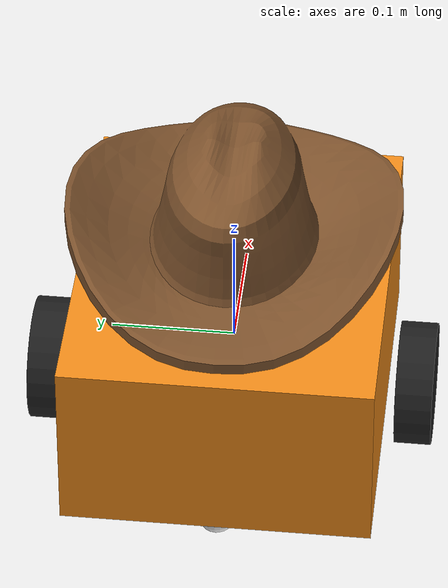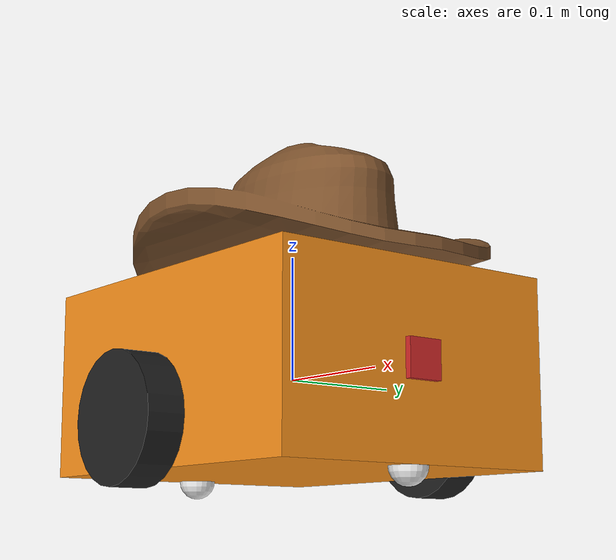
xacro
<?xml version="1.0"?>

<!-- Puts all the pieces (urdf, control, simulation) of the protobot together -->
<robot xmlns:xacro="http://www.ros.org/wiki/xacro" name="protobot">
    <xacro:arg name="prefix" default="" />
    <xacro:arg name="use_gazebo" default="false" />

    <!-- Import different pieces of the protobot -->
    <!-- RVIZ colors -->
    <xacro:include filename="$(find protobot_description)/urdf/materials.xacro" />

    <!-- Use macros from imported files to define the full protobot -->
    <!-- Core URDF -->
    <xacro:include filename="$(find protobot_description)/urdf/protobot_core.xacro" />
    <xacro:protobot_core prefix="$(arg prefix)"/>

    <!-- Camera -->
    <xacro:include filename="$(find protobot_description)/urdf/camera.xacro" />
    <xacro:camera parent="chassis" prefix="$(arg prefix)">
        <origin xyz="0.15 0 0" rpy="0 0 0" />
    </xacro:camera>

    <!-- ROS2 Control -->
    <xacro:include filename="$(find protobot_description)/urdf/protobot_control.xacro" />
    <xacro:protobot_ros2_control name="protobot" prefix="$(arg prefix)" use_gazebo="$(arg use_gazebo)" />

    <!-- Gazebo-specific URDF -->
    <xacro:if value="$(arg use_gazebo)">
        <xacro:include filename="$(find protobot_description)/urdf/protobot_gazebo.xacro" />
        <xacro:protobot_gazebo prefix="$(arg prefix)"/>
    </xacro:if>

</robot>

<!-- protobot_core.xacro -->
<robot xmlns:xacro="http://www.ros.org/wiki/xacro">
<!-- Modified from: https://github.com/ros-controls/ros2_control_demos/blob/master/ros2_control_demo_description/diffbot/urdf/diffbot_description.urdf.xacro -->

  <xacro:macro name="protobot_core" params="prefix">

  <!-- Constants for robot dimensions -->
  <xacro:property name="PI" value="3.1415926535897931"/>
  <xacro:property name="chassis_mass" value="0.5" /> <!-- arbitrary value for base mass -->
  <xacro:property name="chassis_length" value="0.3" />
  <xacro:property name="chassis_width" value="0.25" />
  <xacro:property name="chassis_height" value="0.15" />
  <xacro:property name="wheel_base" value="0.31" /> <!-- make this bigger than chassis_width -->
  <xacro:property name="wheel_mass" value="0.3" /> <!-- arbitrary value for wheel mass -->
  <xacro:property name="wheel_width" value="0.030" />
  <xacro:property name="wheel_radius" value="0.05" />
  <xacro:property name="wheel_axis_vertical_offset" value="-0.04" /> <!-- signed distance from chassis center to wheel axis -->
  <xacro:property name="caster_wheel_mass" value="0.1" /> <!-- arbitrary value for caster wheel mass -->
  <xacro:property name="caster_wheel_radius" value="${-wheel_axis_vertical_offset + wheel_radius - chassis_height/2}" />

  <!-- Dummy link with no inertiais used as root (for gazebo) -->
  <link name="base_link"/>

  <!-- Chassis Link -->
  <link name="${prefix}chassis">
    <collision>
      <origin xyz="0 0 0" rpy="0 0 0"/>
      <geometry>
        <box size="${chassis_length} ${chassis_width} ${chassis_height}"/>
      </geometry>
    </collision>

    <visual>
      <origin xyz="0 0 0" rpy="0 0 0"/>
      <geometry>
        <box size="${chassis_length} ${chassis_width} ${chassis_height}"/>
      </geometry>
      <material name="orange"/>
    </visual>

    <inertial>
      <origin xyz="0 0 0" rpy="0 0 0"/>
      <mass value="${chassis_mass}"/>
      <inertia
        ixx="${chassis_mass / 12.0 * (chassis_width*chassis_width + chassis_height*chassis_height)}" ixy="0.0" ixz="0.0"
        iyy="${chassis_mass / 12.0 * (chassis_height*chassis_height + chassis_length*chassis_length)}" iyz="0.0"
        izz="${chassis_mass / 12.0 * (chassis_length*chassis_length + chassis_width*chassis_width)}"/>
      </inertial>
    </link>

    <joint name="${prefix}base_to_chassis_joint" type="fixed">
      <parent link="base_link"/>
      <child link="${prefix}chassis"/>
      <origin xyz="0 0 0" rpy="0 0 0" />
    </joint>

    <joint name="${prefix}left_wheel_joint" type="continuous">
      <parent link="${prefix}chassis"/>
      <child link="${prefix}left_wheel"/>
      <origin xyz="0 ${chassis_length/2} ${wheel_axis_vertical_offset}" rpy="${-PI/2} 0 0"/>
      <axis xyz="0 0 1"/>
    </joint>

    <!-- left wheel Link -->
    <link name="${prefix}left_wheel">
      <collision>
        <origin xyz="0 0 0" rpy="0 0 0"/>
        <geometry>
          <!-- Sphere has point-contact with the ground, which makes simulation more stable -->
          <sphere radius="${wheel_radius}"/>
        </geometry>
      </collision>

      <visual>
        <origin xyz="0 0 0" rpy="0 0 0"/>
        <geometry>
          <cylinder length="${wheel_width}" radius="${wheel_radius}"/>
        </geometry>
        <material name="black"/>
      </visual>

      <inertial>
        <origin xyz="0 0 0" rpy="0 0 0"/>
        <mass value="${wheel_mass}"/>
        <inertia
          ixx="${wheel_mass / 12.0 * (3*wheel_radius*wheel_radius + wheel_width*wheel_width)}" ixy="0.0" ixz="0.0"
          iyy="${wheel_mass / 12.0 * (3*wheel_radius*wheel_radius + wheel_width*wheel_width)}" iyz="0.0"
          izz="${wheel_mass / 2.0 * wheel_radius*wheel_radius}"/>
        </inertial>
      </link>

    <joint name="${prefix}right_wheel_joint" type="continuous">
      <parent link="${prefix}chassis"/>
      <child link="${prefix}right_wheel"/>
      <origin xyz="0 ${-chassis_length/2} ${wheel_axis_vertical_offset}" rpy="${PI/2} 0 0"/>
      <axis xyz="0 0 -1"/> <!-- Note that "Forward" rotation is opposite compared to the left wheel -->
    </joint>

    <!-- right wheel Link -->
    <link name="${prefix}right_wheel">
      <collision>
        <origin xyz="0 0 0" rpy="0 0 0"/>
        <geometry>
          <!-- Sphere has point-contact with the ground, which makes simulation more stable -->
          <sphere radius="${wheel_radius}"/>
        </geometry>
      </collision>

      <visual>
        <origin xyz="0 0 0" rpy="0 0 0"/>
        <geometry>
          <cylinder length="${wheel_width}" radius="${wheel_radius}"/>
        </geometry>
        <material name="black"/>
      </visual>

      <inertial>
        <origin xyz="0 0 0" rpy="0 0 0"/>
        <mass value="${wheel_mass}"/>
        <inertia
          ixx="${wheel_mass / 12.0 * (3*wheel_radius*wheel_radius + wheel_width*wheel_width)}" ixy="0.0" ixz="0.0"
          iyy="${wheel_mass / 12.0 * (3*wheel_radius*wheel_radius + wheel_width*wheel_width)}" iyz="0.0"
          izz="${wheel_mass / 2.0 * wheel_radius*wheel_radius}"/>
        </inertial>
      </link>

    <joint name="${prefix}front_caster_wheel_joint" type="fixed">
      <parent link="${prefix}chassis"/>
      <child link="${prefix}front_caster_wheel"/>
      <origin xyz="${chassis_length/2 - caster_wheel_radius} 0 ${-chassis_height/2}" rpy="0 0 0"/>
    </joint>

    <!-- caster front wheel Link -->
    <link name="${prefix}front_caster_wheel">
      <collision>
        <origin xyz="0 0 0" rpy="0 0 0"/>
        <geometry>
          <sphere radius="${caster_wheel_radius}"/>
        </geometry>
      </collision>

      <visual>
        <origin xyz="0 0 0" rpy="0 0 0"/>
        <geometry>
          <sphere radius="${caster_wheel_radius}"/>
        </geometry>
        <material name="white"/>
      </visual>

      <inertial>
        <origin xyz="0 0 0" rpy="0 0 0"/>
        <mass value="${caster_wheel_mass}"/>
        <inertia
          ixx="${caster_wheel_mass * 0.4 * (caster_wheel_radius * caster_wheel_radius)}" ixy="0.0" ixz="0.0"
          iyy="${caster_wheel_mass * 0.4 * (caster_wheel_radius * caster_wheel_radius)}" iyz="0.0"
          izz="${caster_wheel_mass * 0.4 * (caster_wheel_radius * caster_wheel_radius)}"/>
        </inertial>
      </link>

    <joint name="${prefix}rear_caster_wheel_joint" type="fixed">
      <parent link="${prefix}chassis"/>
      <child link="${prefix}rear_caster_wheel"/>
      <origin xyz="${-chassis_length/2 + caster_wheel_radius} 0 ${-chassis_height/2}" rpy="0 0 0"/>
    </joint>

    <!-- caster rear wheel Link -->
    <link name="${prefix}rear_caster_wheel">
      <collision>
        <origin xyz="0 0 0" rpy="0 0 0"/>
        <geometry>
          <sphere radius="${caster_wheel_radius}"/>
        </geometry>
      </collision>

      <visual>
        <origin xyz="0 0 0" rpy="0 0 0"/>
        <geometry>
          <sphere radius="${caster_wheel_radius}"/>
        </geometry>
        <material name="white"/>
      </visual>

      <inertial>
        <origin xyz="0 0 0" rpy="0 0 0"/>
        <mass value="${caster_wheel_mass}"/>
        <inertia
          ixx="${caster_wheel_mass * 0.4 * (caster_wheel_radius * caster_wheel_radius)}" ixy="0.0" ixz="0.0"
          iyy="${caster_wheel_mass * 0.4 * (caster_wheel_radius * caster_wheel_radius)}" iyz="0.0"
          izz="${caster_wheel_mass * 0.4 * (caster_wheel_radius * caster_wheel_radius)}"/>
        </inertial>
      </link>

    <!-- Hat joint -->
    <joint name="${prefix}hat_joint" type="fixed">
      <parent link="${prefix}chassis"/>
      <child link="${prefix}hat"/>
      <origin xyz="0.03 0 ${chassis_height/2}" rpy="0 0 0"/>
    </joint>

    <!-- Hat link -->
    <link name="${prefix}hat">
      <visual>
        <origin xyz="0 0 0" rpy="0 0 0"/>
        <geometry>
          <mesh filename="file://$(find protobot_description)/meshes/cowboy_hat.stl" scale="0.001 0.001 0.001"/>
        </geometry>
        <material name="brown"/>
      </visual>
    </link>

  </xacro:macro>

</robot>

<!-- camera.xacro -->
<robot xmlns:xacro="http://www.ros.org/wiki/xacro" >

  <xacro:macro name="camera" params="parent prefix *origin">

    <joint name="camera_joint" type="fixed">
        <parent link="${parent}"/>
        <child link="${prefix}camera_link"/>
        <xacro:insert_block name="origin"/>
    </joint>

    <link name="${prefix}camera_link">
        <visual>
            <geometry>
                <box size="0.010 0.03 0.03"/>
            </geometry>
            <material name="red"/>
        </visual>
        <collision>
            <geometry>
                <box size="0.010 0.03 0.03"/>
            </geometry>
        </collision>
        <inertial>
            <mass value="0.01"/>
            <inertia ixx="0.0001" ixy="0" ixz="0" iyy="0.0001" iyz="0" izz="0.0001"/>
        </inertial>
    </link>

    <joint name="camera_optical_joint" type="fixed">
        <parent link="${prefix}camera_link"/>
        <child link="${prefix}camera_link_optical"/>
        <origin xyz="0 0 0" rpy="${-pi/2} 0 ${-pi/2}"/>
    </joint>

    <link name="${prefix}camera_link_optical"></link>

    <gazebo reference="${prefix}camera_link">
        <material>Gazebo/Red</material>

        <sensor name="camera" type="camera">
            <pose> 0 0 0 0 0 0 </pose>
            <visualize>true</visualize>
            <update_rate>10</update_rate>
            <camera>
                <camera_info_topic>/camera/camera_info</camera_info_topic>
                <horizontal_fov>1.089</horizontal_fov>
                <image>
                    <format>R8G8B8</format>
                    <width>640</width>
                    <height>480</height>
                </image>
                <clip>
                    <near>0.05</near>
                    <far>8.0</far>
                </clip>
            </camera>
            <topic>camera/image_raw</topic>
            <gz_frame_id>camera_link_optical</gz_frame_id>
        </sensor>
    </gazebo>

  </xacro:macro>

</robot>
